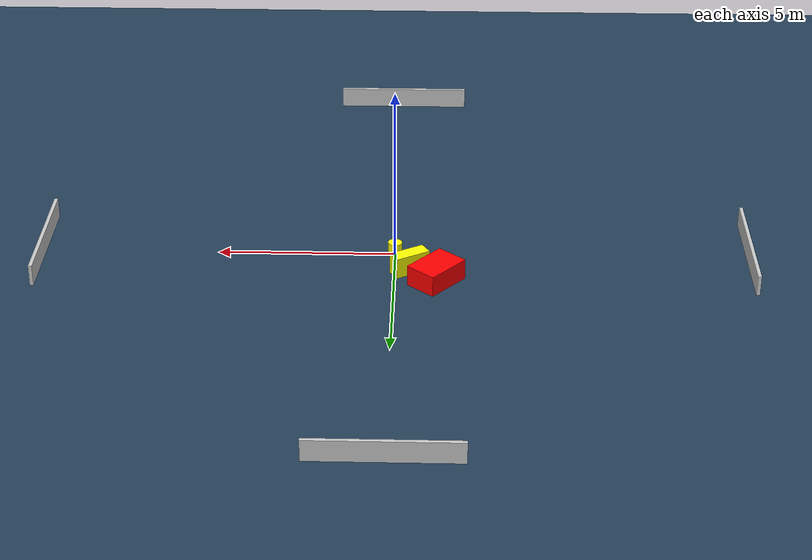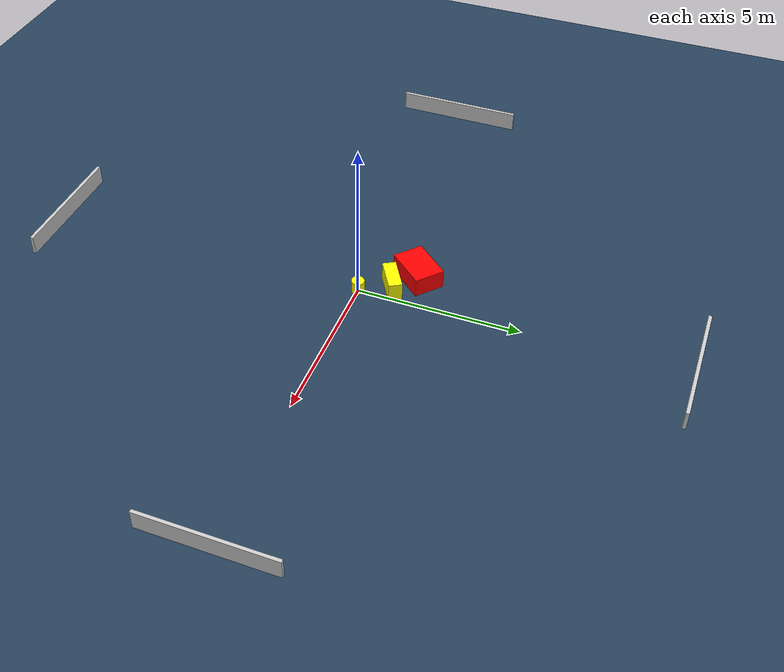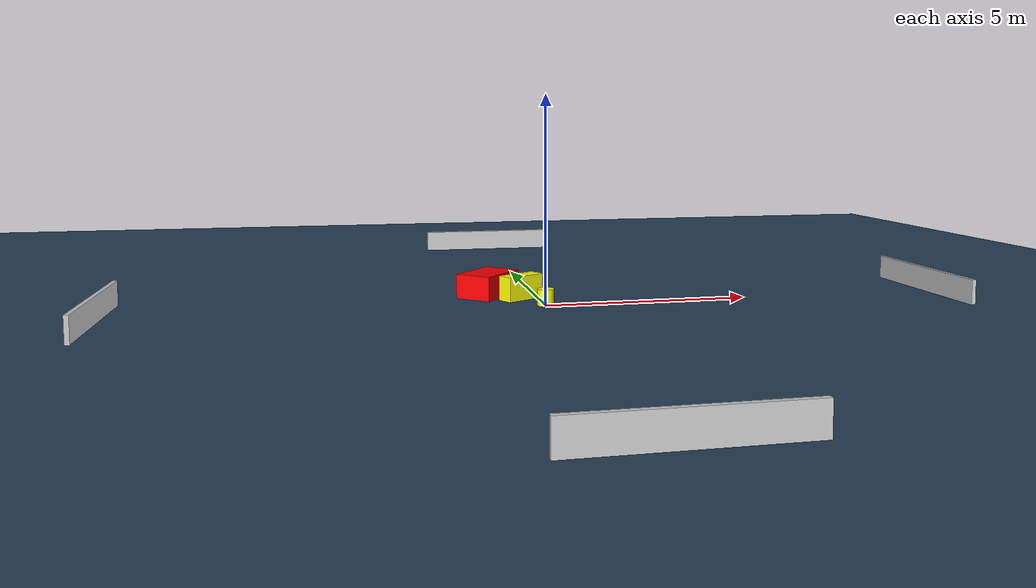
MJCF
<?xml version="1.0" ?>
<mujoco model="generated_environment">
  <option timestep="0.01" integrator="RK4" cone="elliptic"/>
  <default>
    <geom density="1"/>
  </default>
  <asset>
    <texture builtin="gradient" height="3072" name="skybox" rgb1="0.3 0.5 0.7" rgb2="0 0 0" type="skybox" width="512"/>
    <texture builtin="checker" height="300" name="groundplane" rgb1="0.2 0.3 0.4" rgb2="0.1 0.2 0.3" type="2d" width="300"/>
    <material name="groundplane" reflectance="0.2" texrepeat="5 5" texture="groundplane"/>
  </asset>
  <worldbody>
    <light dir="0 0 -1" directional="true" pos="0 0 1.5"/>
    <geom condim="3" friction="0.5 0.005 0.001" material="groundplane" name="floor" pos="0 0 0" size="0 0 0.05" type="plane"/>
    <body name="walls">
      <geom name="wall_1" condim="4" pos="-10.0 0.0 0.3" rgba="0.800000011920929 0.800000011920929 0.800000011920929 1.0" size="0.05 2.0 0.3" type="box"/>
      <geom name="wall_2" condim="4" pos="10.0 0.0 0.3" rgba="0.800000011920929 0.800000011920929 0.800000011920929 1.0" size="0.05 2.0 0.3" type="box"/>
      <geom name="wall_3" condim="4" pos="0.0 -10.0 0.3" rgba="0.800000011920929 0.800000011920929 0.800000011920929 1.0" size="2.0 0.05 0.3" type="box"/>
      <geom name="wall_4" condim="4" pos="0.0 10.0 0.3" rgba="0.800000011920929 0.800000011920929 0.800000011920929 1.0" size="2.0 0.05 0.3" type="box"/>
    </body>
    <body name="robot">
      <joint name="joint_x" type="slide" pos="0 0 0" axis="1 0 0"/>
      <joint name="joint_y" type="slide" pos="0 0 0" axis="0 1 0"/>
      <geom name="robot" type="cylinder" pos="0.0 0.0 0.2" size="0.2 0.2 0.0" mass="5.0" friction="1.0 0.005 0.0001" condim="4" rgba="1.0 1.0 0.0 1.0"/>
    </body>
    <body name="obstacle_1_movable">
      <geom name="obstacle_1_movable" condim="4" pos="-0.4288139388153959 0.9236693443027545 0.3" euler="0 0 210.49258803419315" friction="0.0 0.005 0.001" rgba="1.0 1.0 0.0 1.0" size="0.5219400366815659 0.20698908467730853 0.3" type="box" mass="0.1"/>
      <joint type="free"/>
    </body>
    <body name="obstacle_2_static">
      <geom name="obstacle_2_static" condim="4" pos="-1.1762765689960955 1.4938354389077992 0.3" euler="0 0 228.94564089171965" friction="0.0 0.005 0.001" rgba="1.0 0.0 0.0 1.0" size="0.6747438633362983 0.4748708567977466 0.3" type="box"/>
    </body>
  </worldbody>
  <actuator>
    <motor name="actuator_x" joint="joint_x" gear="1" ctrlrange="-1 1"/>
    <motor name="actuator_y" joint="joint_y" gear="1" ctrlrange="-1 1"/>
  </actuator>
</mujoco>
